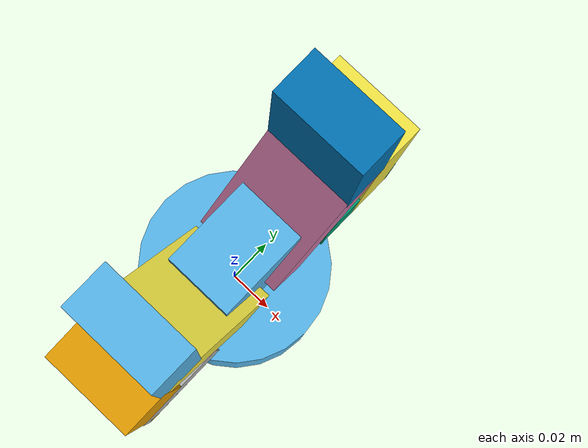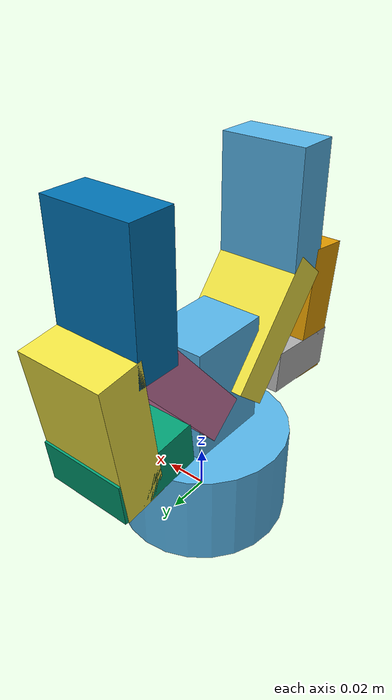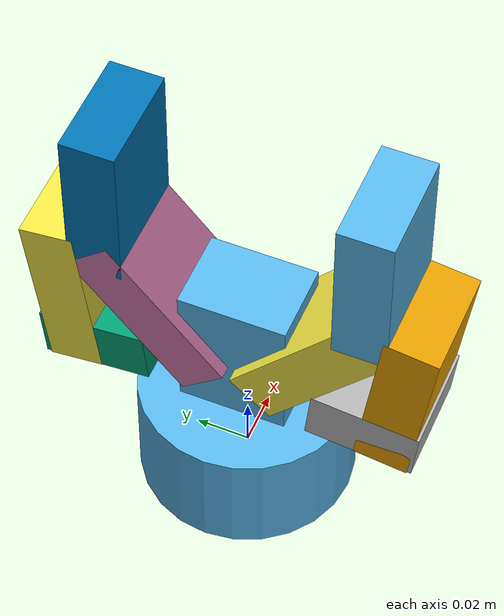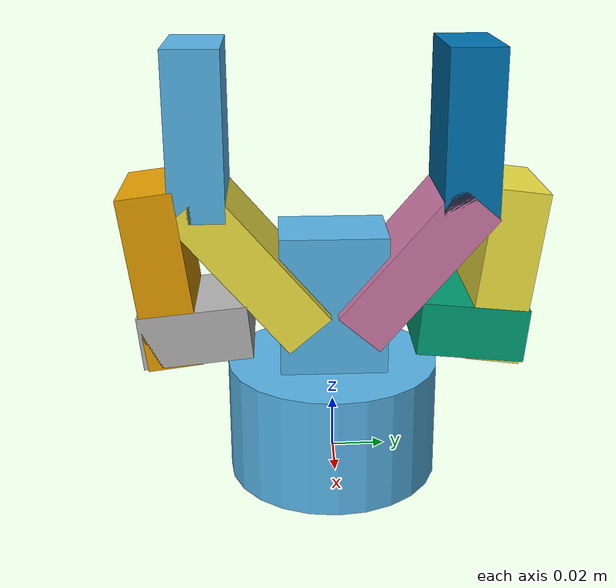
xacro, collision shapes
<?xml version="1.0" ?>
<robot name="example" xmlns:xacro="http://ros.org/wiki/xacro">

	<xacro:include filename="$(find robotiq_c_description)/model/c85.urdf.xacro" />

	<link name="world"/>

	<xacro:robotiq_c_85 name="simple_gripper" parent="world" precise_collision="false" adaptive_transmission="false">
		<origin xyz="0 0 0" rpy="0 0 0"/>
	</xacro:robotiq_c_85>

</robot>

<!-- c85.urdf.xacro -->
<!-- length is along the z-axis! -->

<robot xmlns:xacro="http://ros.org/wiki/xacro">
	<xacro:macro name="robotiq_c_85" params="parent name precise_collision:=false adaptive_transmission:=false *origin">

		<!-- base -->
		<joint name="${parent}_${name}_base_joint" type="fixed">
			<insert_block name="origin"/>
			<parent link="${parent}"/>
			<child link="${name}_base"/>
		</joint>
		<link name="${name}_base">
			<visual>
				<geometry>
					<mesh filename="package://robotiq_c_description/model/meshes/c85/visual/base.dae" scale="0.001 0.001 0.001"/>
				</geometry>
			</visual>
			<xacro:unless value="${precise_collision}">
			<collision>
				<origin xyz="0 0 0.015" rpy="0 0 0"/>
				<geometry>
					<cylinder radius="0.04" length="0.045"/>
				</geometry>
			</collision>
			<collision>
				<origin xyz="0 0 0.06" rpy="0 0 0"/>
				<geometry>
					<box size="0.03 0.04 0.06"/>
				</geometry>
			</collision>
			</xacro:unless>
			<xacro:if value="${precise_collision}">
			<collision>
				<geometry>
					<mesh filename="package://robotiq_c_description/model/meshes/c85/collision/base.stl" scale="0.001 0.001 0.001"/>
				</geometry>
			</collision>
			</xacro:if>
		</link>

		<!-- right finger -->

		<joint name="${name}_right_driver_joint" type="revolute">
			<origin xyz="0 0.0306011 0.054904" rpy="0 0 0"/>
			<parent link="${name}_base"/>
			<child link="${name}_right_driver"/>
			<axis xyz="1 0 0"/>
			<limit lower="${0 * 3.141592 / 180}" upper="${41 * 3.141592 / 180}" effort="176" velocity="${110 * 3.141592 / 180}" />
		</joint>
		<link name="${name}_right_driver">
			<visual>
				<geometry>
					<mesh filename="package://robotiq_c_description/model/meshes/c85/visual/driver.dae" scale="0.001 0.001 0.001"/>
				</geometry>
			</visual>
			<xacro:unless value="${precise_collision}">
			<collision>
				<origin xyz="0 0.02 0" rpy="-0.1 0 0"/>
				<geometry>
					<box size="0.04 0.04 0.02"/>
				</geometry>
			</collision>
			</xacro:unless>
			<xacro:if value="${precise_collision}">
			<collision>
				<geometry>
					<mesh filename="package://robotiq_c_description/model/meshes/c85/collision/driver.stl" scale="0.001 0.001 0.001"/>
				</geometry>
			</collision>
			</xacro:if>
		</link>

		<xacro:unless value="${adaptive_transmission}">
		<joint name="${name}_right_coupler_joint" type="fixed">
			<origin xyz="0 0.0315 -0.0041" rpy="0 0 0"/>
			<parent link="${name}_right_driver"/>
			<child link="${name}_right_coupler"/>
		</joint>
		</xacro:unless>
		<xacro:if value="${adaptive_transmission}">
			<joint name="${name}_right_coupler_joint" type="revolute">
			<origin xyz="0 0.0315 -0.0041" rpy="0 0 0"/>
			<parent link="${name}_right_driver"/>
			<child link="${name}_right_coupler"/>
			<axis xyz="1 0 0"/>
			<limit lower="${-170 * 3.141592 / 180}" upper="${170 * 3.141592 / 180}" effort="176" velocity="${110 * 3.141592 / 180}" />
		</joint>
		</xacro:if>
		<link name="${name}_right_coupler">
			<visual>
				<geometry>
					<mesh filename="package://robotiq_c_description/model/meshes/c85/visual/coupler.dae" scale="0.001 0.001 0.001"/>
				</geometry>
			</visual>
			<xacro:unless value="${precise_collision}">
			<collision>
				<origin xyz="0 0.0 0.025" rpy="-1.7 0 0"/>
				<geometry>
					<box size="0.04 0.065 0.02"/>
				</geometry>
			</collision>
			</xacro:unless>
			<xacro:if value="${precise_collision}">
				<collision>
					<geometry>
						<mesh filename="package://robotiq_c_description/model/meshes/c85/collision/coupler.stl" scale="0.001 0.001 0.001"/>
					</geometry>
				</collision>
			</xacro:if>
		</link>

		<joint name="${name}_right_follower_joint" type="revolute">
			<origin xyz="0 0.0061 0.0471" rpy="0 0 0"/>
			<parent link="${name}_right_coupler"/>
			<child link="${name}_right_follower"/>
			<axis xyz="1 0 0"/>
			<limit lower="${-170 * 3.141592 / 180}" upper="${170 * 3.141592 / 180}" effort="176" velocity="${110 * 3.141592 / 180}" />

			<xacro:unless value="${adaptive_transmission}">
			<mimic joint="${name}_right_driver_joint" multiplier="-1"/>
			</xacro:unless>
		</joint>
		<link name="${name}_right_follower">
			<visual>
				<geometry>
					<mesh filename="package://robotiq_c_description/model/meshes/c85/visual/follower.dae" scale="0.001 0.001 0.001"/>
				</geometry>
			</visual>
			<xacro:unless value="${precise_collision}">
			<collision>
				<origin xyz="0 -0.02 0.03" rpy="0 0 0"/>
				<geometry>
					<box size="0.04 0.02 0.06"/>
				</geometry>
			</collision>
			</xacro:unless>
			<xacro:if value="${precise_collision}">
			<collision>
				<geometry>
					<mesh filename="package://robotiq_c_description/model/meshes/c85/collision/follower.stl" scale="0.001 0.001 0.001"/>
				</geometry>
			</collision>
			</xacro:if>
		</link>

		<joint name="${name}_right_pad_joint" type="fixed">
			<parent link="${name}_right_follower"/>
			<child link="${name}_right_pad"/>
		</joint>
		<link name="${name}_right_pad">
			<visual>
				<geometry>
					<mesh filename="package://robotiq_c_description/model/meshes/c85/visual/pad.dae" scale="0.001 0.001 0.001"/>
				</geometry>
			</visual>
			<xacro:unless value="${precise_collision}">
			<collision>
				<origin xyz="0 -0.02 0.03" rpy="0 0 0"/>
				<geometry>
					<box size="0.04 0.02 0.06"/>
				</geometry>
			</collision>
			</xacro:unless>
			<xacro:if value="${precise_collision}">
			<collision>
				<geometry>
					<mesh filename="package://robotiq_c_description/model/meshes/c85/collision/pad.stl" scale="0.001 0.001 0.001"/>
				</geometry>
			</collision>
			</xacro:if>
		</link>

		<joint name="${name}_right_spring_link_joint" type="revolute">
			<origin xyz="0 0.012 0.0614" rpy="0 0 0"/>
			<parent link="${name}_base"/>
			<child link="${name}_right_spring_link"/>
			<axis xyz="1 0 0"/>
			<limit lower="${-170 * 3.141592 / 180}" upper="${170 * 3.141592 / 180}" effort="176" velocity="${110 * 3.141592 / 180}" />

			<xacro:unless value="${adaptive_transmission}">
			<mimic joint="${name}_right_driver_joint" multiplier="1"/>
			</xacro:unless>
		</joint>
		<link name="${name}_right_spring_link">
			<visual>
				<geometry>
					<mesh filename="package://robotiq_c_description/model/meshes/c85/visual/spring_link.dae" scale="0.001 0.001 0.001"/>
				</geometry>
			</visual>
			<xacro:unless value="${precise_collision}">
			<collision>
				<origin xyz="0 0.018 0.018" rpy="-0.7068 0 0"/>
				<geometry>
					<box size="0.04 0.02 0.065"/>
				</geometry>
			</collision>
			</xacro:unless>
			<xacro:if value="${precise_collision}">
			<collision>
				<geometry>
					<mesh filename="package://robotiq_c_description/model/meshes/c85/collision/spring_link.stl" scale="0.001 0.001 0.001"/>
				</geometry>
			</collision>
			</xacro:if>
		</link>

		<!-- left finger -->

		<joint name="${name}_left_driver_joint" type="revolute">
			<origin xyz="0 -0.0306011 0.054904" rpy="0 0 3.141592653589793"/>
			<parent link="${name}_base"/>
			<child link="${name}_left_driver"/>
			<axis xyz="1 0 0"/>
			<limit lower="${0 * 3.141592 / 180}" upper="${41 * 3.141592 / 180}" effort="176" velocity="${110 * 3.141592 / 180}" />

			<xacro:unless value="${adaptive_transmission}">
			<mimic joint="${name}_right_driver_joint" multiplier="1"/>
			</xacro:unless>
		</joint>
		<link name="${name}_left_driver">
			<visual>
				<geometry>
					<mesh filename="package://robotiq_c_description/model/meshes/c85/visual/driver.dae" scale="0.001 0.001 0.001"/>
				</geometry>
			</visual>
			<xacro:unless value="${precise_collision}">
			<collision>
				<origin xyz="0 0.02 0" rpy="-0.1 0 0"/>
				<geometry>
					<box size="0.04 0.04 0.02"/>
				</geometry>
			</collision>
			</xacro:unless>
			<xacro:if value="${precise_collision}">
			<collision>
				<geometry>
					<mesh filename="package://robotiq_c_description/model/meshes/c85/collision/driver.stl" scale="0.001 0.001 0.001"/>
				</geometry>
			</collision>
			</xacro:if>
		</link>

		<xacro:unless value="${adaptive_transmission}">
		<joint name="${name}_left_coupler_joint" type="fixed">
			<origin xyz="0 0.0315 -0.0041" rpy="0 0 0"/>
			<parent link="${name}_left_driver"/>
			<child link="${name}_left_coupler"/>
		</joint>
		</xacro:unless>
		<xacro:if value="${adaptive_transmission}">
			<joint name="${name}_left_coupler_joint" type="revolute">
			<origin xyz="0 0.0315 -0.0041" rpy="0 0 0"/>
			<parent link="${name}_left_driver"/>
			<child link="${name}_left_coupler"/>
			<axis xyz="1 0 0"/>
			<limit lower="${-170 * 3.141592 / 180}" upper="${170 * 3.141592 / 180}" effort="176" velocity="${110 * 3.141592 / 180}" />
		</joint>
		</xacro:if>
		<link name="${name}_left_coupler">
			<visual>
				<geometry>
					<mesh filename="package://robotiq_c_description/model/meshes/c85/visual/coupler.dae" scale="0.001 0.001 0.001"/>
				</geometry>
			</visual>
			<xacro:unless value="${precise_collision}">
			<collision>
				<origin xyz="0 0.0 0.025" rpy="-1.7 0 0"/>
				<geometry>
					<box size="0.04 0.065 0.02"/>
				</geometry>
			</collision>
			</xacro:unless>
			<xacro:if value="${precise_collision}">
				<collision>
					<geometry>
						<mesh filename="package://robotiq_c_description/model/meshes/c85/collision/coupler.stl" scale="0.001 0.001 0.001"/>
					</geometry>
				</collision>
			</xacro:if>
		</link>

		<joint name="${name}_left_follower_joint" type="revolute">
			<origin xyz="0 0.0061 0.0471" rpy="0 0 0"/>
			<parent link="${name}_left_coupler"/>
			<child link="${name}_left_follower"/>
			<axis xyz="1 0 0"/>
			<limit lower="${-170 * 3.141592 / 180}" upper="${170 * 3.141592 / 180}" effort="176" velocity="${110 * 3.141592 / 180}" />

			<xacro:unless value="${adaptive_transmission}">
			<mimic joint="${name}_right_driver_joint" multiplier="-1"/>
			</xacro:unless>
		</joint>
		<link name="${name}_left_follower">
			<visual>
				<geometry>
					<mesh filename="package://robotiq_c_description/model/meshes/c85/visual/follower.dae" scale="0.001 0.001 0.001"/>
				</geometry>
			</visual>
			<xacro:unless value="${precise_collision}">
			<collision>
				<origin xyz="0 -0.02 0.03" rpy="0 0 0"/>
				<geometry>
					<box size="0.04 0.02 0.06"/>
				</geometry>
			</collision>
			</xacro:unless>
			<xacro:if value="${precise_collision}">
			<collision>
				<geometry>
					<mesh filename="package://robotiq_c_description/model/meshes/c85/collision/follower.stl" scale="0.001 0.001 0.001"/>
				</geometry>
			</collision>
			</xacro:if>
		</link>

		<joint name="${name}_left_pad_joint" type="fixed">
			<parent link="${name}_left_follower"/>
			<child link="${name}_left_pad"/>
		</joint>
		<link name="${name}_left_pad">
			<visual>
				<geometry>
					<mesh filename="package://robotiq_c_description/model/meshes/c85/visual/pad.dae" scale="0.001 0.001 0.001"/>
				</geometry>
			</visual>
			<xacro:unless value="${precise_collision}">
			<collision>
				<origin xyz="0 -0.02 0.03" rpy="0 0 0"/>
				<geometry>
					<box size="0.04 0.02 0.06"/>
				</geometry>
			</collision>
			</xacro:unless>
			<xacro:if value="${precise_collision}">
			<collision>
				<geometry>
					<mesh filename="package://robotiq_c_description/model/meshes/c85/collision/pad.stl" scale="0.001 0.001 0.001"/>
				</geometry>
			</collision>
			</xacro:if>
		</link>

		<joint name="${name}_left_spring_link_joint" type="revolute">
			<origin xyz="0 -0.012 0.0614" rpy="0 0 3.141592653589793"/>
			<parent link="${name}_base"/>
			<child link="${name}_left_spring_link"/>
			<axis xyz="1 0 0"/>
			<limit lower="${-170 * 3.141592 / 180}" upper="${170 * 3.141592 / 180}" effort="176" velocity="${110 * 3.141592 / 180}" />

			<xacro:unless value="${adaptive_transmission}">
			<mimic joint="${name}_right_driver_joint" multiplier="1"/>
			</xacro:unless>
		</joint>
		<link name="${name}_left_spring_link">
			<visual>
				<geometry>
					<mesh filename="package://robotiq_c_description/model/meshes/c85/visual/spring_link.dae" scale="0.001 0.001 0.001"/>
				</geometry>
			</visual>
			<xacro:unless value="${precise_collision}">
			<collision>
				<origin xyz="0 0.018 0.018" rpy="-0.7068 0 0"/>
				<geometry>
					<box size="0.04 0.02 0.065"/>
				</geometry>
			</collision>
			</xacro:unless>
			<xacro:if value="${precise_collision}">
			<collision>
				<geometry>
					<mesh filename="package://robotiq_c_description/model/meshes/c85/collision/spring_link.stl" scale="0.001 0.001 0.001"/>
				</geometry>
			</collision>
			</xacro:if>
		</link>
	</xacro:macro>
</robot>
